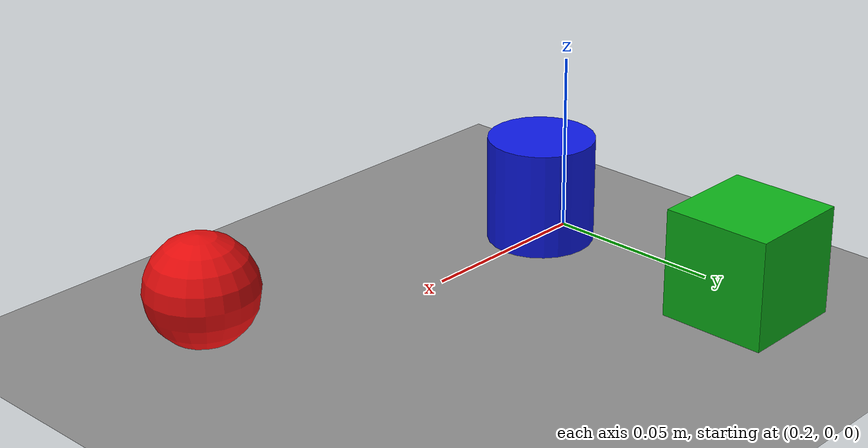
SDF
<?xml version="1.0"?>
<sdf version="1.9">
  <world name="shape_challenge">
    <physics name="1ms" type="ignored">
      <max_step_size>0.001</max_step_size>
      <real_time_factor>1.0</real_time_factor>
    </physics>
    <plugin filename="gz-sim-physics-system" name="gz::sim::systems::Physics"/>
    <plugin filename="gz-sim-user-commands-system" name="gz::sim::systems::UserCommands"/>
    <plugin filename="gz-sim-scene-broadcaster-system" name="gz::sim::systems::SceneBroadcaster"/>
    <plugin filename="gz-sim-sensors-system" name="gz::sim::systems::Sensors">
      <render_engine>ogre2</render_engine>
    </plugin>
    <plugin filename="gz-sim-imu-system" name="gz::sim::systems::Imu"/>

    <scene>
      <ambient>0.6 0.6 0.6 1</ambient>
      <background>0.8 0.8 0.8 1</background>
      <grid>false</grid>
    </scene>

    <light type="directional" name="sun">
      <cast_shadows>true</cast_shadows>
      <pose>0 0 10 0 0 0</pose>
      <diffuse>0.9 0.9 0.9 1</diffuse>
      <specular>0.2 0.2 0.2 1</specular>
      <direction>-0.5 0.1 -0.9</direction>
    </light>

    <model name="ground_plane">
      <static>true</static>
      <link name="link">
        <collision name="c"><geometry><plane><normal>0 0 1</normal><size>6 6</size></plane></geometry></collision>
        <visual name="v"><geometry><plane><normal>0 0 1</normal><size>6 6</size></plane></geometry>
          <material><ambient>0.55 0.55 0.55 1</ambient><diffuse>0.55 0.55 0.55 1</diffuse></material></visual>
      </link>
    </model>
    <model name="cuboid">
      <static>true</static>
      <pose>0.21 0.07 0.015 0 0 0</pose>
      <link name="link"><visual name="v"><geometry><box><size>0.03 0.03 0.03</size></box></geometry>
        <material><ambient>0.05 0.7 0.1 1</ambient><diffuse>0.05 0.7 0.1 1</diffuse></material></visual></link>
    </model>
    <model name="sphere">
      <static>true</static>
      <pose>0.315 -0.02 0.015 0 0 0</pose>
      <link name="link"><visual name="v"><geometry><sphere><radius>0.015</radius></sphere></geometry>
        <material><ambient>0.9 0.05 0.05 1</ambient><diffuse>0.9 0.05 0.05 1</diffuse></material></visual></link>
    </model>
    <model name="cylinder">
      <static>true</static>
      <pose>0.21 0.0 0.015 0 0 0</pose>
      <link name="link"><visual name="v"><geometry><cylinder><radius>0.015</radius><length>0.03</length></cylinder></geometry>
        <material><ambient>0.05 0.1 0.9 1</ambient><diffuse>0.05 0.1 0.9 1</diffuse></material></visual></link>
    </model>
  </world>
</sdf>
